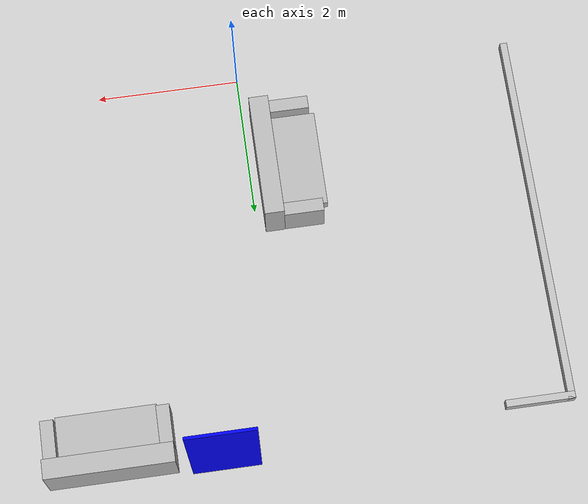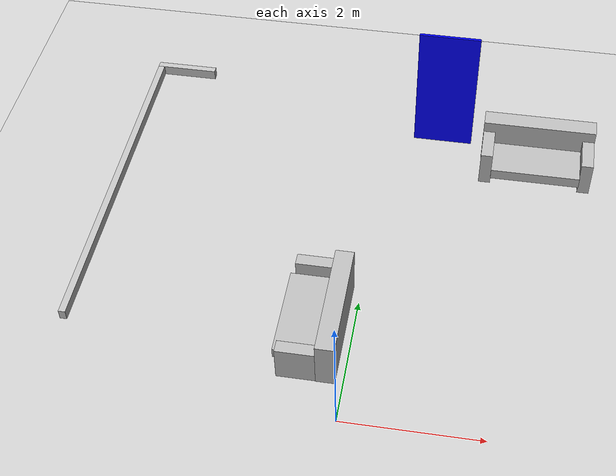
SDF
<sdf version="1.6">
 <world name="robotics_testlabs">
  <light name="sun" type="directional">
   <direction>0.5 0.1 -0.9</direction>
   <pose>0 0 10 0 0 0</pose>
   <specular>0.2 0.2 0.2 1</specular>
   <diffuse>0.8 0.8 0.8 1</diffuse>
   <attenuation>
    <range>1000</range>
    <quadratic>0.001</quadratic>
    <constant>0.9</constant>
    <linear>0.01</linear>
   </attenuation>
  </light>
  <model name="operator"><pose>-2.798 -1.499 1.0 0 0 0</pose><static>true</static></model>
  <model name="corridor" type="waypoint"><pose>2.7 5 0 0 0 0</pose><static>true</static></model>
  <model name="battery_point" type="waypoint"><pose>-2.8 2.0 0 0 0 0</pose><static>true</static></model>
  <model name="initial_pose" type="waypoint"><pose>0.586 4.259 0 0 0 0</pose><static>true</static></model>
  <model name="robonurse_initial" type="waypoint"><pose>0.586 4.259 0 0 0 0</pose><static>true</static></model>
  <model name="bookcase_waypoint" type="waypoint"><pose>2.58 2.66 0 0 0 0</pose><static>true</static></model>
  <model name="entry_point" type="waypoint"><pose>1.897 4.295 0 0 0 0</pose><static>true</static></model>
  <model name="exit" type="waypoint"><pose>-1.48 -0.031 0 0 0 3.1415</pose><static>true</static></model>
  <model name="exit_pre" type="waypoint"><pose>0 0 0 0 0 3.1415</pose><static>true</static></model>
  <model name="registration_table1" type="waypoint">
   <pose>2.0 1.5 0 0 0 3.1415</pose>
   <static>true</static>
  </model>
  <model name="registration_table2" type="waypoint">
   <pose>2.0 1.5 0 0 0 3.1415</pose>
   <static>true</static>
  </model>
  <model name="registration_table3" type="waypoint">
   <pose>2.0 1.5 0 0 0 3.1415</pose>
   <static>true</static>
  </model>
  <model name="exit_1_rips" type="waypoint"><pose>-1.48 -0.031 0 0 0 3.1415</pose><static>true</static></model>
  <model name="exit_2_rips" type="waypoint"><pose>-1.48 -0.031 0 0 0 3.1415</pose><static>true</static></model>
  <model name="exit_3_rips" type="waypoint"><pose>-1.48 -0.031 0 0 0 3.1415</pose><static>true</static></model>
  <model name="exit_4_rips" type="waypoint"><pose>-1.48 -0.031 0 0 0 3.1415</pose><static>true</static></model>
  <model name="door_navigation" type="waypoint">
   <pose>-0.168 6.216 0 0 0 -1.5708</pose>
   <static>true</static>
  </model>
  <model name="door_opening_left_dest" type="waypoint">
   <pose>-0.168 6.216 0 0 0 1.5708</pose>
   <static>true</static>
  </model>
  <model name="door_opening_right_dest" type="waypoint">
   <pose>0.862 6.216 0 0 0 1.5708</pose>
   <static>true</static>
  </model>
  <model name="door_opening_left_start" type="waypoint">
   <pose>-0.168 4.8 0 0 0 1.5708</pose>
   <static>true</static>
  </model>
  <model name="door_opening_right_start" type="waypoint">
   <pose>0.862 4.8 0 0 0 1.5708</pose>
   <static>true</static>
  </model>
  <model name="help_me_carry_starting_point" type="waypoint">
   <pose>1.65 2.0 0 0 0 1.5708</pose>
   <static>true</static>
  </model>
  <model name="serving_drinks_initial" type="waypoint">
   <pose>0.586 4.259 0 0 0 0</pose>
   <static>true</static>
  </model>
  <model name="avoid_that_start" type="waypoint"><pose>2.2 2.2 0 0 0 -2.459</pose><static>true</static></model>
  <model name="avoid_that_wp1" type="waypoint">
   <pose>2.648 -0.579 0 0 0 -3.137</pose>
   <static>true</static>
  </model>
  <model name="avoid_that_wp2" type="waypoint">
   <pose>0.347 -0.665 0 0 0 1.008</pose>
   <static>true</static>
  </model>
  <model name="avoid_that_wp3" type="waypoint">
   <pose>2.648 -0.579 0 0 0 -3.137</pose>
   <static>true</static>
  </model>
  <model name="what_did_you_say_start" type="waypoint">
   <pose>0.347 -0.665 0 0 0 1.008</pose>
   <static>true</static>
  </model>
  <model name="person_rec_learning" type="waypoint">
   <pose>2.661 4.052 0 0 0 3.139</pose>
   <static>true</static>
  </model>
  <model name="person_rec_living_room_1" type="waypoint">
   <pose>2.016 3.025 0 0 0 -1.572</pose>
   <static>true</static>
  </model>
  <model name="person_rec_living_room_2" type="waypoint">
   <pose>2.482 2.27 0 0 0 -1.899</pose>
   <static>true</static>
  </model>
  <model name="person_rec_living_room_3" type="waypoint">
   <pose>1.51 2.22 0 0 0 -0.971</pose>
   <static>true</static>
  </model>
  <model name="gpsr_meeting_point" type="waypoint">
   <pose>2.2 1.5 0 0 0 3.1415</pose>
   <static>true</static>
  </model>
  <model name="operator_pose" type="waypoint"><static>true</static></model>
  <model name="explore1" type="waypoint"><pose>2.0 4.0 0 0 0 0.0</pose><static>true</static></model>
  <model name="explore2" type="waypoint"><pose>2.0 2.5 0 0 0 0.0</pose><static>true</static></model>
  <model name="explore3" type="waypoint"><pose>2.0 2.0 0 0 0 3.14</pose><static>true</static></model>
  <model name="explore4" type="waypoint"><pose>2.0 1.5 0 0 0 0.0</pose><static>true</static></model>
  <model name="explore5" type="waypoint"><pose>1.0 0.3 0 0 0 0.0</pose><static>true</static></model>
  <model name="explore6" type="waypoint"><pose>1.5 -0.5 0 0 0 -1.57</pose><static>true</static></model>
  <model name="explore7" type="waypoint"><pose>-1.5 0.0 0 0 0 3.14</pose><static>true</static></model>
  <model name="explore8" type="waypoint"><pose>-1.5 2.0 0 0 0 2.36</pose><static>true</static></model>
  <model name="explore9" type="waypoint"><pose>-0.5 4.0 0 0 0 3.14</pose><static>true</static></model>
  <model name="explore10" type="waypoint"><pose>0.5 4.5 0 0 0 -1.57</pose><static>true</static></model>
  <model name="wp_test_nav1" type="waypoint"><pose>2.032 1.03 0 0 0 3.138</pose><static>true</static></model>
  <model name="livingroom" type="room">
   <link name="in">
    <virtual_volume name="in_vv">
     <geometry><box><size>3.83 4.75 2.5</size></box></geometry>
     <pose>0.135 -0.335 1.25 0 0 0</pose>
    </virtual_volume>
   </link>
   <pose>1.5 1.0 0.0 0 0 0</pose>
   <static>true</static>
  </model>
  <model name="kitchen" type="room">
   <link name="in">
    <virtual_volume name="in_vv">
     <geometry><box><size>2.05 2.31 2.5</size></box></geometry>
     <pose>0.365 -0.145 1.25 0 0 0</pose>
    </virtual_volume>
   </link>
   <pose>2.2 4.5 0.0 0 0 0</pose>
   <static>true</static>
  </model>
  <model name="bedroom" type="room">
   <link name="in">
    <virtual_volume name="in_vv">
     <geometry><box><size>3.35 2.38 2.5</size></box></geometry>
     <pose>-0.085 -0.04 1.25 0 0 0</pose>
    </virtual_volume>
   </link>
   <pose>-2.0 -0.5 0.0 0 0 0</pose>
   <static>true</static>
  </model>
  <model name="workshop" type="room">
   <link name="in">
    <virtual_volume name="in_vv">
     <geometry><box><size>3.34 4.72 2.5</size></box></geometry>
     <pose>-0.09 0.15 1.25 0 0 0</pose>
    </virtual_volume>
   </link>
   <pose>-2.0 3.0 0.0 0 0 0</pose>
   <static>true</static>
  </model>
  <model name="hallway" type="room">
   <link name="in">
    <virtual_volume name="in_vv">
     <geometry><box><size>1.89 2.29 2.5</size></box></geometry>
     <pose>0.445 -0.135 1.25 0 0 0</pose>
    </virtual_volume>
   </link>
   <pose>0.0 4.5 0.0 0 0 0</pose>
   <static>true</static>
  </model>
  <include>
   <pose>1.31 5.585 0 0 0 -1.57079632679</pose>
   <name>door2</name>
   <uri>model://robotics_testlabs/blue_door_right</uri>
  </include>
  <include><name>floor</name><uri>model://ground_plane</uri></include>
  <include>
   <pose>-0.65 1.45 0 0 0 3.14159265359</pose>
   <name>hallway_table</name>
   <uri>model://ddw/couch</uri>
  </include>
  <include>
   <pose>2.35 5.0 0 0 0 -1.5707963267948966</pose>
   <name>couch</name>
   <uri>model://robotics_testlabs/couch</uri>
  </include>
  <include>
   <pose>-3.72 2.96 0.94 0 0 0</pose>
   <name>electro_bar_1</name>
   <uri>model://robotics_testlabs/electro_bar_1</uri>
  </include>
  <physics type="ode">
   <real_time_update_rate>333.0</real_time_update_rate>
   <max_step_size>0.003</max_step_size>
   <ode><constraints><cfm>0.0001</cfm></constraints><solver><type>quick</type><iters>100</iters></solver></ode>
  </physics>
 </world>
</sdf>

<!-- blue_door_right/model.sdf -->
<sdf version="1.6">
  <model name="robotics_testlabs/blue_door_right">
    <link name="1_link">
      <collision name="1_col">
        <geometry>
          <box>
            <size>0.04 0.926 2.12</size>
          </box>
        </geometry>
      </collision>
      <visual name="1_vis">
        <geometry>
          <box>
            <size>0.04 0.926 2.12</size>
          </box>
        </geometry>
        <material>
          <ambient>0 0 1 1</ambient>
        </material>
      </visual>
      <pose>0.025 -0.473 1.06 0 0 0</pose>
    </link>
    <static>true</static>
  </model>
</sdf>

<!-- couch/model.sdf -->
<sdf version="1.6">
  <model name="couch">
    <link name="back">
      <collision name="back_col">
        <geometry>
          <box>
            <size>0.27 1.73 0.75</size>
          </box>
        </geometry>
      </collision>
      <visual name="back_vis">
        <geometry>
          <box>
            <size>0.27 1.73 0.75</size>
          </box>
        </geometry>
      </visual>
      <pose>-0.4 0 0.37 0 0 0</pose>
    </link>
    <link name="side_left">
      <collision name="side_left_col">
        <geometry>
          <box>
            <size>0.57 0.18 0.57</size>
          </box>
        </geometry>
      </collision>
      <visual name="side_left_vis">
        <geometry>
          <box>
            <size>0.57 0.18 0.57</size>
          </box>
        </geometry>
      </visual>
      <pose>0 -0.77 0.28 0 0 0</pose>
    </link>
    <link name="side_right">
      <collision name="side_right_col">
        <geometry>
          <box>
            <size>0.57 0.18 0.57</size>
          </box>
        </geometry>
      </collision>
      <visual name="side_right_vis">
        <geometry>
          <box>
            <size>0.57 0.18 0.57</size>
          </box>
        </geometry>
      </visual>
      <pose>0 0.77 0.28 0 0 0</pose>
    </link>
    <link name="seat">
      <collision name="seat_col">
        <geometry>
          <box>
            <size>0.62 1.36 0.17</size>
          </box>
        </geometry>
      </collision>
      <visual name="seat_vis">
        <geometry>
          <box>
            <size>0.62 1.36 0.17</size>
          </box>
        </geometry>
      </visual>
      <pose>0.05 0 0.26 0 0 0</pose>
    </link>
    <link name="on_top_of">
      <virtual_volume name="on_top_of_vv">
        <geometry>
          <box>
            <size>0.46 1.3 0.25</size>
          </box>
        </geometry>
        <pose>0.02 0.0 0.44 0 0 0</pose>
      </virtual_volume>
    </link>
    <link name="in_front_of">
      <virtual_volume name="in_front_of_vv">
        <geometry>
          <box>
            <size>0.2 1.16 0.01</size>
          </box>
        </geometry>
        <pose>0.75 0.0 0.005 0 0 0</pose>
      </virtual_volume>
    </link>
    <static>true</static>
  </model>
</sdf>

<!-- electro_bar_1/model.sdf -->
<sdf version="1.6">
  <model name="robotics_testlabs/electro_bar_1">
    <link name="1_link">
      <collision name="1_col">
        <geometry>
          <box>
            <size>0.095 5.085 0.15</size>
          </box>
        </geometry>
      </collision>
      <visual name="1_vis">
        <geometry>
          <box>
            <size>0.095 5.085 0.15</size>
          </box>
        </geometry>
        <material>
          <ambient>0.75 0.75 0.75 1</ambient>
        </material>
      </visual>
      <pose>0.015 0 0.075 0 0 0</pose>
    </link>
    <link name="2_link">
      <collision name="2_col">
        <geometry>
          <box>
            <size>0.91 0.095 0.15</size>
          </box>
        </geometry>
      </collision>
      <visual name="2_vis">
        <geometry>
          <box>
            <size>0.91 0.095 0.15</size>
          </box>
        </geometry>
        <material>
          <ambient>0.75 0.75 0.75 1</ambient>
        </material>
      </visual>
      <pose>0.4225 2.495 0.075 0 0 0</pose>
    </link>
    <static>true</static>
  </model>
</sdf>
